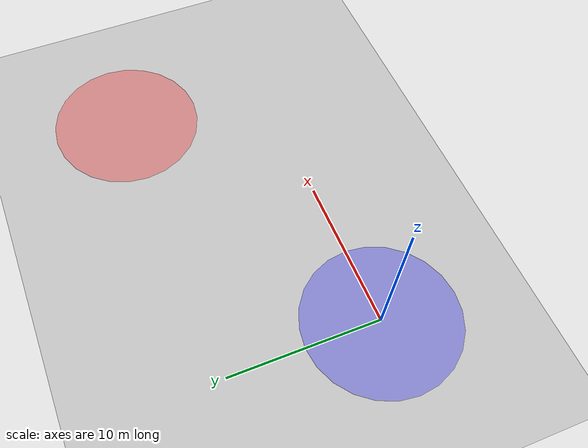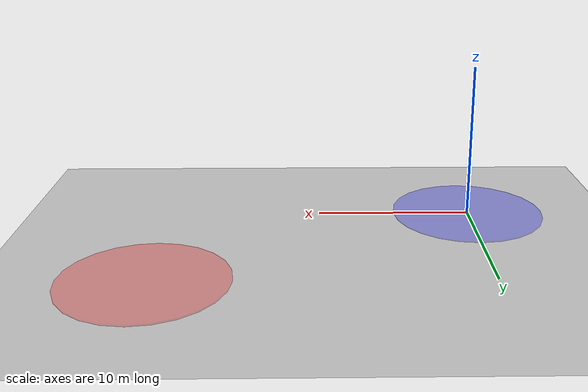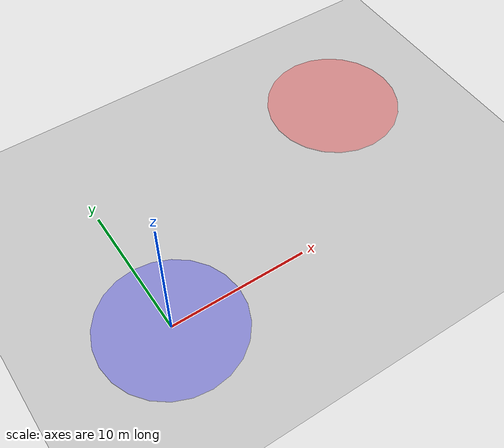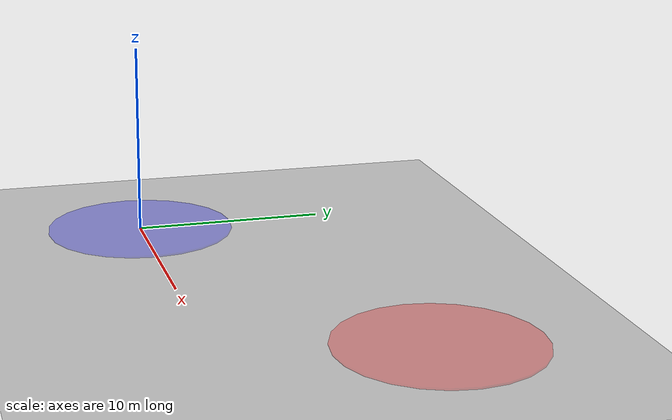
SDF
<?xml version="1.0" ?>
<sdf version="1.8">
    <world name="twin_cities">
        <physics name="1ms" type="ignored">
            <max_step_size>0.001</max_step_size>
            <real_time_factor>1.0</real_time_factor>
        </physics>
        <plugin filename="gz-sim-physics-system" name="gz::sim::systems::Physics"></plugin>
        <plugin filename="gz-sim-user-commands-system" name="gz::sim::systems::UserCommands"></plugin>
        <plugin filename="gz-sim-scene-broadcaster-system" name="gz::sim::systems::SceneBroadcaster"></plugin>

        <light type="directional" name="sun">
            <cast_shadows>true</cast_shadows>
            <pose>0 0 10 0 0 0</pose>
            <diffuse>0.8 0.8 0.8 1</diffuse>
            <specular>0.2 0.2 0.2 1</specular>
            <attenuation>
                <range>1000</range>
                <constant>0.9</constant>
                <linear>0.01</linear>
                <quadratic>0.001</quadratic>
            </attenuation>
            <direction>-0.5 0.1 -0.9</direction>
        </light>

        <model name="ground_plane">
            <static>true</static>
            <link name="link">
                <collision name="collision">
                    <geometry>
                        <plane>
                            <normal>0 0 1</normal>
                            <size>100 100</size>
                        </plane>
                    </geometry>
                </collision>
                <visual name="visual">
                    <geometry>
                        <plane>
                            <normal>0 0 1</normal>
                            <size>100 100</size>
                        </plane>
                    </geometry>
                    <material>
                        <ambient>0.8 0.8 0.8 1</ambient>
                        <diffuse>0.8 0.8 0.8 1</diffuse>
                        <specular>0.8 0.8 0.8 1</specular>
                    </material>
                </visual>
            </link>
        </model>

        <!-- Rio Region Marker -->
        <model name="rio_marker">
            <static>true</static>
            <pose>0 0 0.05 0 0 0</pose>
            <link name="link">
                <visual name="visual">
                    <geometry><cylinder><radius>5</radius><length>0.1</length></cylinder></geometry>
                    <material><ambient>0 0 1 0.3</ambient><diffuse>0 0 1 0.3</diffuse></material>
                </visual>
            </link>
        </model>

        <!-- SP Region Marker -->
        <model name="sp_marker">
            <static>true</static>
            <pose>20 10 0.05 0 0 0</pose>
            <link name="link">
                <visual name="visual">
                    <geometry><cylinder><radius>5</radius><length>0.1</length></cylinder></geometry>
                    <material><ambient>1 0 0 0.3</ambient><diffuse>1 0 0 0.3</diffuse></material>
                </visual>
            </link>
        </model>
    </world>
</sdf>
